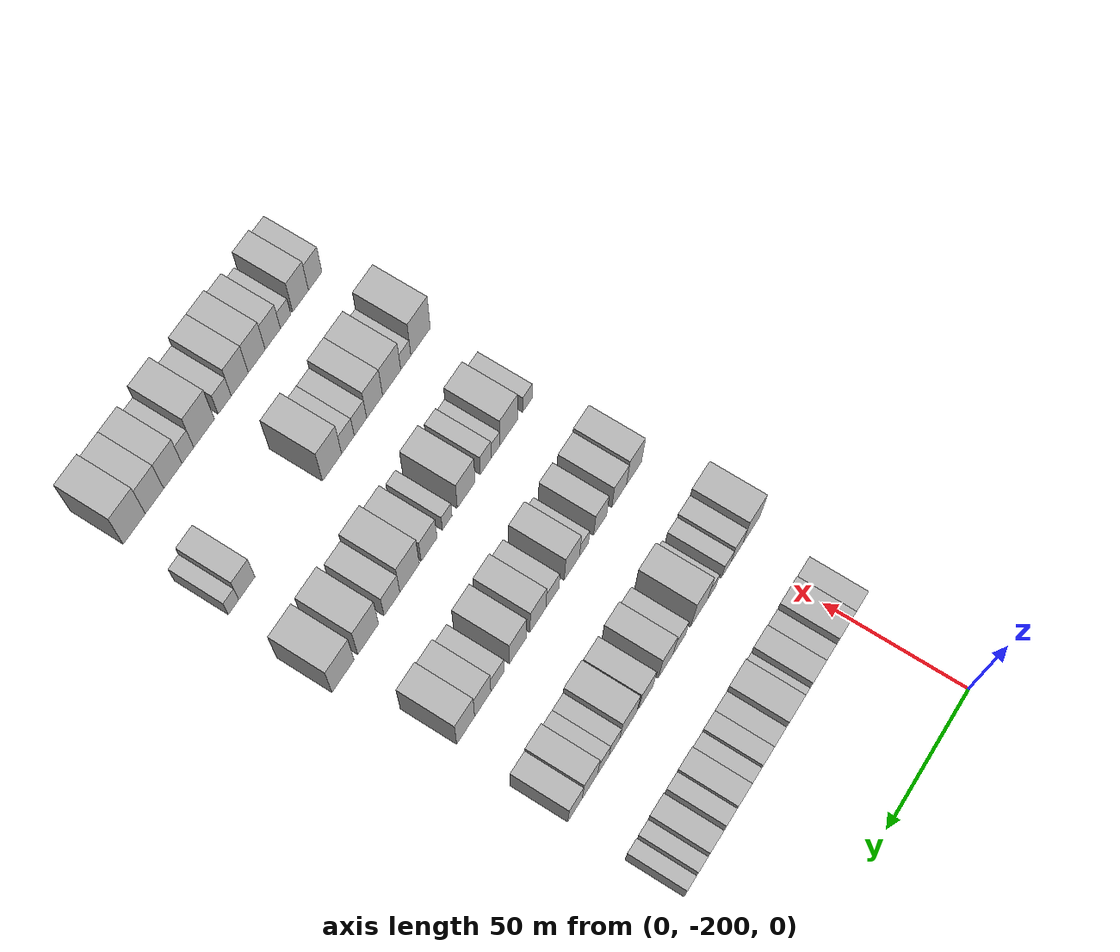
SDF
<sdf version="1.6">
 <world name="default">
  <model name="building_49">
   <static>1</static>
   <pose>50.0000 -200.3005 0 0.000000 0.000000 0.000000</pose>
   <link name="link">
    <pose>0 0 9.00 0 0 0</pose>
    <collision name="collision"><geometry><box><size>20.0000 8.2305 18.0000</size></box></geometry></collision>
    <visual name="visual">
     <cast_shadows>0</cast_shadows>
     <geometry><box><size>20.0000 8.2305 18.0000</size></box></geometry>
     <material>
      <script>
       <uri>model://HANNAS_wall/materials/scripts</uri>
       <uri>model://HANNAS_wall/materials/textures</uri>
       <name>vrc/HANNAS_wall</name>
      </script>
     </material>
    </visual>
   </link>
  </model>
  <model name="building_50">
   <static>1</static>
   <pose>50.0000 -191.2537 0 0.000000 0.000000 0.000000</pose>
   <link name="link">
    <pose>0 0 10.50 0 0 0</pose>
    <collision name="collision"><geometry><box><size>20.0000 9.8631 21.0000</size></box></geometry></collision>
    <visual name="visual">
     <cast_shadows>0</cast_shadows>
     <geometry><box><size>20.0000 9.8631 21.0000</size></box></geometry>
     <material>
      <script>
       <uri>model://HANNAS_wall/materials/scripts</uri>
       <uri>model://HANNAS_wall/materials/textures</uri>
       <name>vrc/HANNAS_wall</name>
      </script>
     </material>
    </visual>
   </link>
  </model>
  <model name="building_51">
   <static>1</static>
   <pose>50.0000 -182.9809 0 0.000000 0.000000 0.000000</pose>
   <link name="link">
    <pose>0 0 7.50 0 0 0</pose>
    <collision name="collision"><geometry><box><size>20.0000 6.6825 15.0000</size></box></geometry></collision>
    <visual name="visual">
     <cast_shadows>0</cast_shadows>
     <geometry><box><size>20.0000 6.6825 15.0000</size></box></geometry>
     <material>
      <script>
       <uri>model://HANNAS_wall/materials/scripts</uri>
       <uri>model://HANNAS_wall/materials/textures</uri>
       <name>vrc/HANNAS_wall</name>
      </script>
     </material>
    </visual>
   </link>
  </model>
  <model name="building_52">
   <static>1</static>
   <pose>50.0000 -175.6053 0 0.000000 0.000000 0.000000</pose>
   <link name="link">
    <pose>0 0 9.00 0 0 0</pose>
    <collision name="collision"><geometry><box><size>20.0000 8.0686 18.0000</size></box></geometry></collision>
    <visual name="visual">
     <cast_shadows>0</cast_shadows>
     <geometry><box><size>20.0000 8.0686 18.0000</size></box></geometry>
     <material>
      <script>
       <uri>model://HANNAS_wall/materials/scripts</uri>
       <uri>model://HANNAS_wall/materials/textures</uri>
       <name>vrc/HANNAS_wall</name>
      </script>
     </material>
    </visual>
   </link>
  </model>
  <model name="building_53">
   <static>1</static>
   <pose>50.0000 -169.0578 0 0.000000 0.000000 0.000000</pose>
   <link name="link">
    <pose>0 0 6.00 0 0 0</pose>
    <collision name="collision"><geometry><box><size>20.0000 5.0264 12.0000</size></box></geometry></collision>
    <visual name="visual">
     <cast_shadows>0</cast_shadows>
     <geometry><box><size>20.0000 5.0264 12.0000</size></box></geometry>
     <material>
      <script>
       <uri>model://HANNAS_wall/materials/scripts</uri>
       <uri>model://HANNAS_wall/materials/textures</uri>
       <name>vrc/HANNAS_wall</name>
      </script>
     </material>
    </visual>
   </link>
  </model>
  <model name="building_54">
   <static>1</static>
   <pose>50.0000 -161.7525 0 0.000000 0.000000 0.000000</pose>
   <link name="link">
    <pose>0 0 10.50 0 0 0</pose>
    <collision name="collision"><geometry><box><size>20.0000 9.5842 21.0000</size></box></geometry></collision>
    <visual name="visual">
     <cast_shadows>0</cast_shadows>
     <geometry><box><size>20.0000 9.5842 21.0000</size></box></geometry>
     <material>
      <script>
       <uri>model://HANNAS_wall/materials/scripts</uri>
       <uri>model://HANNAS_wall/materials/textures</uri>
       <name>vrc/HANNAS_wall</name>
      </script>
     </material>
    </visual>
   </link>
  </model>
  <model name="building_55">
   <static>1</static>
   <pose>50.0000 -153.5226 0 0.000000 0.000000 0.000000</pose>
   <link name="link">
    <pose>0 0 7.50 0 0 0</pose>
    <collision name="collision"><geometry><box><size>20.0000 6.8758 15.0000</size></box></geometry></collision>
    <visual name="visual">
     <cast_shadows>0</cast_shadows>
     <geometry><box><size>20.0000 6.8758 15.0000</size></box></geometry>
     <material>
      <script>
       <uri>model://HANNAS_wall/materials/scripts</uri>
       <uri>model://HANNAS_wall/materials/textures</uri>
       <name>vrc/HANNAS_wall</name>
      </script>
     </material>
    </visual>
   </link>
  </model>
  <model name="building_56">
   <static>1</static>
   <pose>50.0000 -146.8123 0 0.000000 0.000000 0.000000</pose>
   <link name="link">
    <pose>0 0 7.50 0 0 0</pose>
    <collision name="collision"><geometry><box><size>20.0000 6.5448 15.0000</size></box></geometry></collision>
    <visual name="visual">
     <cast_shadows>0</cast_shadows>
     <geometry><box><size>20.0000 6.5448 15.0000</size></box></geometry>
     <material>
      <script>
       <uri>model://HANNAS_wall/materials/scripts</uri>
       <uri>model://HANNAS_wall/materials/textures</uri>
       <name>vrc/HANNAS_wall</name>
      </script>
     </material>
    </visual>
   </link>
  </model>
  <model name="building_57">
   <static>1</static>
   <pose>50.0000 -140.6268 0 0.000000 0.000000 0.000000</pose>
   <link name="link">
    <pose>0 0 6.00 0 0 0</pose>
    <collision name="collision"><geometry><box><size>20.0000 5.8261 12.0000</size></box></geometry></collision>
    <visual name="visual">
     <cast_shadows>0</cast_shadows>
     <geometry><box><size>20.0000 5.8261 12.0000</size></box></geometry>
     <material>
      <script>
       <uri>model://HANNAS_wall/materials/scripts</uri>
       <uri>model://HANNAS_wall/materials/textures</uri>
       <name>vrc/HANNAS_wall</name>
      </script>
     </material>
    </visual>
   </link>
  </model>
  <model name="building_58">
   <static>1</static>
   <pose>50.0000 -132.7668 0 0.000000 0.000000 0.000000</pose>
   <link name="link">
    <pose>0 0 9.00 0 0 0</pose>
    <collision name="collision"><geometry><box><size>20.0000 7.8940 18.0000</size></box></geometry></collision>
    <visual name="visual">
     <cast_shadows>0</cast_shadows>
     <geometry><box><size>20.0000 7.8940 18.0000</size></box></geometry>
     <material>
      <script>
       <uri>model://HANNAS_wall/materials/scripts</uri>
       <uri>model://HANNAS_wall/materials/textures</uri>
       <name>vrc/HANNAS_wall</name>
      </script>
     </material>
    </visual>
   </link>
  </model>
  <model name="building_59">
   <static>1</static>
   <pose>50.0000 -125.8042 0 0.000000 0.000000 0.000000</pose>
   <link name="link">
    <pose>0 0 7.50 0 0 0</pose>
    <collision name="collision"><geometry><box><size>20.0000 6.0313 15.0000</size></box></geometry></collision>
    <visual name="visual">
     <cast_shadows>0</cast_shadows>
     <geometry><box><size>20.0000 6.0313 15.0000</size></box></geometry>
     <material>
      <script>
       <uri>model://HANNAS_wall/materials/scripts</uri>
       <uri>model://HANNAS_wall/materials/textures</uri>
       <name>vrc/HANNAS_wall</name>
      </script>
     </material>
    </visual>
   </link>
  </model>
  <model name="building_60">
   <static>1</static>
   <pose>50.0000 -116.9228 0 0.000000 0.000000 0.000000</pose>
   <link name="link">
    <pose>0 0 9.00 0 0 0</pose>
    <collision name="collision"><geometry><box><size>20.0000 7.7317 18.0000</size></box></geometry></collision>
    <visual name="visual">
     <cast_shadows>0</cast_shadows>
     <geometry><box><size>20.0000 7.7317 18.0000</size></box></geometry>
     <material>
      <script>
       <uri>model://HANNAS_wall/materials/scripts</uri>
       <uri>model://HANNAS_wall/materials/textures</uri>
       <name>vrc/HANNAS_wall</name>
      </script>
     </material>
    </visual>
   </link>
  </model>
  <model name="building_61">
   <static>1</static>
   <pose>50.0000 -110.3490 0 0.000000 0.000000 0.000000</pose>
   <link name="link">
    <pose>0 0 6.00 0 0 0</pose>
    <collision name="collision"><geometry><box><size>20.0000 5.4158 12.0000</size></box></geometry></collision>
    <visual name="visual">
     <cast_shadows>0</cast_shadows>
     <geometry><box><size>20.0000 5.4158 12.0000</size></box></geometry>
     <material>
      <script>
       <uri>model://HANNAS_wall/materials/scripts</uri>
       <uri>model://HANNAS_wall/materials/textures</uri>
       <name>vrc/HANNAS_wall</name>
      </script>
     </material>
    </visual>
   </link>
  </model>
  <model name="building_62">
   <static>1</static>
   <pose>50.0000 -104.0448 0 0.000000 0.000000 0.000000</pose>
   <link name="link">
    <pose>0 0 6.00 0 0 0</pose>
    <collision name="collision"><geometry><box><size>20.0000 5.1927 12.0000</size></box></geometry></collision>
    <visual name="visual">
     <cast_shadows>0</cast_shadows>
     <geometry><box><size>20.0000 5.1927 12.0000</size></box></geometry>
     <material>
      <script>
       <uri>model://HANNAS_wall/materials/scripts</uri>
       <uri>model://HANNAS_wall/materials/textures</uri>
       <name>vrc/HANNAS_wall</name>
      </script>
     </material>
    </visual>
   </link>
  </model>
  <model name="building_189">
   <static>1</static>
   <pose>90.0000 -208.1577 0 0.000000 0.000000 0.000000</pose>
   <link name="link">
    <pose>0 0 10.50 0 0 0</pose>
    <collision name="collision"><geometry><box><size>20.0000 10.3792 21.0000</size></box></geometry></collision>
    <visual name="visual">
     <cast_shadows>0</cast_shadows>
     <geometry><box><size>20.0000 10.3792 21.0000</size></box></geometry>
     <material>
      <script>
       <uri>model://HANNAS_wall/materials/scripts</uri>
       <uri>model://HANNAS_wall/materials/textures</uri>
       <name>vrc/HANNAS_wall</name>
      </script>
     </material>
    </visual>
   </link>
  </model>
  <model name="building_190">
   <static>1</static>
   <pose>90.0000 -199.4439 0 0.000000 0.000000 0.000000</pose>
   <link name="link">
    <pose>0 0 7.50 0 0 0</pose>
    <collision name="collision"><geometry><box><size>20.0000 7.0485 15.0000</size></box></geometry></collision>
    <visual name="visual">
     <cast_shadows>0</cast_shadows>
     <geometry><box><size>20.0000 7.0485 15.0000</size></box></geometry>
     <material>
      <script>
       <uri>model://HANNAS_wall/materials/scripts</uri>
       <uri>model://HANNAS_wall/materials/textures</uri>
       <name>vrc/HANNAS_wall</name>
      </script>
     </material>
    </visual>
   </link>
  </model>
  <model name="building_191">
   <static>1</static>
   <pose>90.0000 -193.0542 0 0.000000 0.000000 0.000000</pose>
   <link name="link">
    <pose>0 0 6.00 0 0 0</pose>
    <collision name="collision"><geometry><box><size>20.0000 5.7309 12.0000</size></box></geometry></collision>
    <visual name="visual">
     <cast_shadows>0</cast_shadows>
     <geometry><box><size>20.0000 5.7309 12.0000</size></box></geometry>
     <material>
      <script>
       <uri>model://HANNAS_wall/materials/scripts</uri>
       <uri>model://HANNAS_wall/materials/textures</uri>
       <name>vrc/HANNAS_wall</name>
      </script>
     </material>
    </visual>
   </link>
  </model>
  <model name="building_192">
   <static>1</static>
   <pose>90.0000 -184.5209 0 0.000000 0.000000 0.000000</pose>
   <link name="link">
    <pose>0 0 6.00 0 0 0</pose>
    <collision name="collision"><geometry><box><size>20.0000 5.3356 12.0000</size></box></geometry></collision>
    <visual name="visual">
     <cast_shadows>0</cast_shadows>
     <geometry><box><size>20.0000 5.3356 12.0000</size></box></geometry>
     <material>
      <script>
       <uri>model://HANNAS_wall/materials/scripts</uri>
       <uri>model://HANNAS_wall/materials/textures</uri>
       <name>vrc/HANNAS_wall</name>
      </script>
     </material>
    </visual>
   </link>
  </model>
  <model name="building_193">
   <static>1</static>
   <pose>90.0000 -176.9055 0 0.000000 0.000000 0.000000</pose>
   <link name="link">
    <pose>0 0 12.00 0 0 0</pose>
    <collision name="collision"><geometry><box><size>20.0000 9.8951 24.0000</size></box></geometry></collision>
    <visual name="visual">
     <cast_shadows>0</cast_shadows>
     <geometry><box><size>20.0000 9.8951 24.0000</size></box></geometry>
     <material>
      <script>
       <uri>model://HANNAS_wall/materials/scripts</uri>
       <uri>model://HANNAS_wall/materials/textures</uri>
       <name>vrc/HANNAS_wall</name>
      </script>
     </material>
    </visual>
   </link>
  </model>
  <model name="building_194">
   <static>1</static>
   <pose>90.0000 -165.2714 0 0.000000 0.000000 0.000000</pose>
   <link name="link">
    <pose>0 0 7.50 0 0 0</pose>
    <collision name="collision"><geometry><box><size>20.0000 7.3732 15.0000</size></box></geometry></collision>
    <visual name="visual">
     <cast_shadows>0</cast_shadows>
     <geometry><box><size>20.0000 7.3732 15.0000</size></box></geometry>
     <material>
      <script>
       <uri>model://HANNAS_wall/materials/scripts</uri>
       <uri>model://HANNAS_wall/materials/textures</uri>
       <name>vrc/HANNAS_wall</name>
      </script>
     </material>
    </visual>
   </link>
  </model>
  <model name="building_195">
   <static>1</static>
   <pose>90.0000 -157.3476 0 0.000000 0.000000 0.000000</pose>
   <link name="link">
    <pose>0 0 10.50 0 0 0</pose>
    <collision name="collision"><geometry><box><size>20.0000 8.4745 21.0000</size></box></geometry></collision>
    <visual name="visual">
     <cast_shadows>0</cast_shadows>
     <geometry><box><size>20.0000 8.4745 21.0000</size></box></geometry>
     <material>
      <script>
       <uri>model://HANNAS_wall/materials/scripts</uri>
       <uri>model://HANNAS_wall/materials/textures</uri>
       <name>vrc/HANNAS_wall</name>
      </script>
     </material>
    </visual>
   </link>
  </model>
  <model name="building_196">
   <static>1</static>
   <pose>90.0000 -145.9497 0 0.000000 0.000000 0.000000</pose>
   <link name="link">
    <pose>0 0 9.00 0 0 0</pose>
    <collision name="collision"><geometry><box><size>20.0000 8.3211 18.0000</size></box></geometry></collision>
    <visual name="visual">
     <cast_shadows>0</cast_shadows>
     <geometry><box><size>20.0000 8.3211 18.0000</size></box></geometry>
     <material>
      <script>
       <uri>model://HANNAS_wall/materials/scripts</uri>
       <uri>model://HANNAS_wall/materials/textures</uri>
       <name>vrc/HANNAS_wall</name>
      </script>
     </material>
    </visual>
   </link>
  </model>
  <model name="building_197">
   <static>1</static>
   <pose>90.0000 -135.8402 0 0.000000 0.000000 0.000000</pose>
   <link name="link">
    <pose>0 0 10.50 0 0 0</pose>
    <collision name="collision"><geometry><box><size>20.0000 9.8979 21.0000</size></box></geometry></collision>
    <visual name="visual">
     <cast_shadows>0</cast_shadows>
     <geometry><box><size>20.0000 9.8979 21.0000</size></box></geometry>
     <material>
      <script>
       <uri>model://HANNAS_wall/materials/scripts</uri>
       <uri>model://HANNAS_wall/materials/textures</uri>
       <name>vrc/HANNAS_wall</name>
      </script>
     </material>
    </visual>
   </link>
  </model>
  <model name="building_198">
   <static>1</static>
   <pose>90.0000 -127.8401 0 0.000000 0.000000 0.000000</pose>
   <link name="link">
    <pose>0 0 7.50 0 0 0</pose>
    <collision name="collision"><geometry><box><size>20.0000 6.1024 15.0000</size></box></geometry></collision>
    <visual name="visual">
     <cast_shadows>0</cast_shadows>
     <geometry><box><size>20.0000 6.1024 15.0000</size></box></geometry>
     <material>
      <script>
       <uri>model://HANNAS_wall/materials/scripts</uri>
       <uri>model://HANNAS_wall/materials/textures</uri>
       <name>vrc/HANNAS_wall</name>
      </script>
     </material>
    </visual>
   </link>
  </model>
  <model name="building_199">
   <static>1</static>
   <pose>90.0000 -121.6535 0 0.000000 0.000000 0.000000</pose>
   <link name="link">
    <pose>0 0 7.50 0 0 0</pose>
    <collision name="collision"><geometry><box><size>20.0000 6.2709 15.0000</size></box></geometry></collision>
    <visual name="visual">
     <cast_shadows>0</cast_shadows>
     <geometry><box><size>20.0000 6.2709 15.0000</size></box></geometry>
     <material>
      <script>
       <uri>model://HANNAS_wall/materials/scripts</uri>
       <uri>model://HANNAS_wall/materials/textures</uri>
       <name>vrc/HANNAS_wall</name>
      </script>
     </material>
    </visual>
   </link>
  </model>
  <model name="building_200">
   <static>1</static>
   <pose>90.0000 -114.1725 0 0.000000 0.000000 0.000000</pose>
   <link name="link">
    <pose>0 0 10.50 0 0 0</pose>
    <collision name="collision"><geometry><box><size>20.0000 8.6910 21.0000</size></box></geometry></collision>
    <visual name="visual">
     <cast_shadows>0</cast_shadows>
     <geometry><box><size>20.0000 8.6910 21.0000</size></box></geometry>
     <material>
      <script>
       <uri>model://HANNAS_wall/materials/scripts</uri>
       <uri>model://HANNAS_wall/materials/textures</uri>
       <name>vrc/HANNAS_wall</name>
      </script>
     </material>
    </visual>
   </link>
  </model>
  <model name="building_201">
   <static>1</static>
   <pose>90.0000 -105.8545 0 0.000000 0.000000 0.000000</pose>
   <link name="link">
    <pose>0 0 9.00 0 0 0</pose>
    <collision name="collision"><geometry><box><size>20.0000 7.9448 18.0000</size></box></geometry></collision>
    <visual name="visual">
     <cast_shadows>0</cast_shadows>
     <geometry><box><size>20.0000 7.9448 18.0000</size></box></geometry>
     <material>
      <script>
       <uri>model://HANNAS_wall/materials/scripts</uri>
       <uri>model://HANNAS_wall/materials/textures</uri>
       <name>vrc/HANNAS_wall</name>
      </script>
     </material>
    </visual>
   </link>
  </model>
  <model name="building_326">
   <static>1</static>
   <pose>130.0000 -204.8175 0 0.000000 0.000000 0.000000</pose>
   <link name="link">
    <pose>0 0 10.50 0 0 0</pose>
    <collision name="collision"><geometry><box><size>20.0000 8.8917 21.0000</size></box></geometry></collision>
    <visual name="visual">
     <cast_shadows>0</cast_shadows>
     <geometry><box><size>20.0000 8.8917 21.0000</size></box></geometry>
     <material>
      <script>
       <uri>model://HANNAS_wall/materials/scripts</uri>
       <uri>model://HANNAS_wall/materials/textures</uri>
       <name>vrc/HANNAS_wall</name>
      </script>
     </material>
    </visual>
   </link>
  </model>
  <model name="building_327">
   <static>1</static>
   <pose>130.0000 -196.0402 0 0.000000 0.000000 0.000000</pose>
   <link name="link">
    <pose>0 0 9.00 0 0 0</pose>
    <collision name="collision"><geometry><box><size>20.0000 8.6630 18.0000</size></box></geometry></collision>
    <visual name="visual">
     <cast_shadows>0</cast_shadows>
     <geometry><box><size>20.0000 8.6630 18.0000</size></box></geometry>
     <material>
      <script>
       <uri>model://HANNAS_wall/materials/scripts</uri>
       <uri>model://HANNAS_wall/materials/textures</uri>
       <name>vrc/HANNAS_wall</name>
      </script>
     </material>
    </visual>
   </link>
  </model>
  <model name="building_328">
   <static>1</static>
   <pose>130.0000 -184.8682 0 0.000000 0.000000 0.000000</pose>
   <link name="link">
    <pose>0 0 9.00 0 0 0</pose>
    <collision name="collision"><geometry><box><size>20.0000 7.6809 18.0000</size></box></geometry></collision>
    <visual name="visual">
     <cast_shadows>0</cast_shadows>
     <geometry><box><size>20.0000 7.6809 18.0000</size></box></geometry>
     <material>
      <script>
       <uri>model://HANNAS_wall/materials/scripts</uri>
       <uri>model://HANNAS_wall/materials/textures</uri>
       <name>vrc/HANNAS_wall</name>
      </script>
     </material>
    </visual>
   </link>
  </model>
  <model name="building_329">
   <static>1</static>
   <pose>130.0000 -175.4334 0 0.000000 0.000000 0.000000</pose>
   <link name="link">
    <pose>0 0 6.00 0 0 0</pose>
    <collision name="collision"><geometry><box><size>20.0000 5.1887 12.0000</size></box></geometry></collision>
    <visual name="visual">
     <cast_shadows>0</cast_shadows>
     <geometry><box><size>20.0000 5.1887 12.0000</size></box></geometry>
     <material>
      <script>
       <uri>model://HANNAS_wall/materials/scripts</uri>
       <uri>model://HANNAS_wall/materials/textures</uri>
       <name>vrc/HANNAS_wall</name>
      </script>
     </material>
    </visual>
   </link>
  </model>
  <model name="building_330">
   <static>1</static>
   <pose>130.0000 -168.4266 0 0.000000 0.000000 0.000000</pose>
   <link name="link">
    <pose>0 0 10.50 0 0 0</pose>
    <collision name="collision"><geometry><box><size>20.0000 8.8248 21.0000</size></box></geometry></collision>
    <visual name="visual">
     <cast_shadows>0</cast_shadows>
     <geometry><box><size>20.0000 8.8248 21.0000</size></box></geometry>
     <material>
      <script>
       <uri>model://HANNAS_wall/materials/scripts</uri>
       <uri>model://HANNAS_wall/materials/textures</uri>
       <name>vrc/HANNAS_wall</name>
      </script>
     </material>
    </visual>
   </link>
  </model>
  <model name="building_331">
   <static>1</static>
   <pose>130.0000 -157.2724 0 0.000000 0.000000 0.000000</pose>
   <link name="link">
    <pose>0 0 7.50 0 0 0</pose>
    <collision name="collision"><geometry><box><size>20.0000 7.4836 15.0000</size></box></geometry></collision>
    <visual name="visual">
     <cast_shadows>0</cast_shadows>
     <geometry><box><size>20.0000 7.4836 15.0000</size></box></geometry>
     <material>
      <script>
       <uri>model://HANNAS_wall/materials/scripts</uri>
       <uri>model://HANNAS_wall/materials/textures</uri>
       <name>vrc/HANNAS_wall</name>
      </script>
     </material>
    </visual>
   </link>
  </model>
  <model name="building_332">
   <static>1</static>
   <pose>130.0000 -149.0197 0 0.000000 0.000000 0.000000</pose>
   <link name="link">
    <pose>0 0 10.50 0 0 0</pose>
    <collision name="collision"><geometry><box><size>20.0000 9.0217 21.0000</size></box></geometry></collision>
    <visual name="visual">
     <cast_shadows>0</cast_shadows>
     <geometry><box><size>20.0000 9.0217 21.0000</size></box></geometry>
     <material>
      <script>
       <uri>model://HANNAS_wall/materials/scripts</uri>
       <uri>model://HANNAS_wall/materials/textures</uri>
       <name>vrc/HANNAS_wall</name>
      </script>
     </material>
    </visual>
   </link>
  </model>
  <model name="building_333">
   <static>1</static>
   <pose>130.0000 -137.7573 0 0.000000 0.000000 0.000000</pose>
   <link name="link">
    <pose>0 0 10.50 0 0 0</pose>
    <collision name="collision"><geometry><box><size>20.0000 9.5032 21.0000</size></box></geometry></collision>
    <visual name="visual">
     <cast_shadows>0</cast_shadows>
     <geometry><box><size>20.0000 9.5032 21.0000</size></box></geometry>
     <material>
      <script>
       <uri>model://HANNAS_wall/materials/scripts</uri>
       <uri>model://HANNAS_wall/materials/textures</uri>
       <name>vrc/HANNAS_wall</name>
      </script>
     </material>
    </visual>
   </link>
  </model>
  <model name="building_334">
   <static>1</static>
   <pose>130.0000 -126.3179 0 0.000000 0.000000 0.000000</pose>
   <link name="link">
    <pose>0 0 7.50 0 0 0</pose>
    <collision name="collision"><geometry><box><size>20.0000 7.3756 15.0000</size></box></geometry></collision>
    <visual name="visual">
     <cast_shadows>0</cast_shadows>
     <geometry><box><size>20.0000 7.3756 15.0000</size></box></geometry>
     <material>
      <script>
       <uri>model://HANNAS_wall/materials/scripts</uri>
       <uri>model://HANNAS_wall/materials/textures</uri>
       <name>vrc/HANNAS_wall</name>
      </script>
     </material>
    </visual>
   </link>
  </model>
  <model name="building_335">
   <static>1</static>
   <pose>130.0000 -118.1557 0 0.000000 0.000000 0.000000</pose>
   <link name="link">
    <pose>0 0 10.50 0 0 0</pose>
    <collision name="collision"><geometry><box><size>20.0000 8.9488 21.0000</size></box></geometry></collision>
    <visual name="visual">
     <cast_shadows>0</cast_shadows>
     <geometry><box><size>20.0000 8.9488 21.0000</size></box></geometry>
     <material>
      <script>
       <uri>model://HANNAS_wall/materials/scripts</uri>
       <uri>model://HANNAS_wall/materials/textures</uri>
       <name>vrc/HANNAS_wall</name>
      </script>
     </material>
    </visual>
   </link>
  </model>
  <model name="building_336">
   <static>1</static>
   <pose>130.0000 -108.7756 0 0.000000 0.000000 0.000000</pose>
   <link name="link">
    <pose>0 0 12.00 0 0 0</pose>
    <collision name="collision"><geometry><box><size>20.0000 9.8114 24.0000</size></box></geometry></collision>
    <visual name="visual">
     <cast_shadows>0</cast_shadows>
     <geometry><box><size>20.0000 9.8114 24.0000</size></box></geometry>
     <material>
      <script>
       <uri>model://HANNAS_wall/materials/scripts</uri>
       <uri>model://HANNAS_wall/materials/textures</uri>
       <name>vrc/HANNAS_wall</name>
      </script>
     </material>
    </visual>
   </link>
  </model>
  <model name="building_466">
   <static>1</static>
   <pose>170.0000 -206.3429 0 0.000000 0.000000 0.000000</pose>
   <link name="link">
    <pose>0 0 6.00 0 0 0</pose>
    <collision name="collision"><geometry><box><size>20.0000 5.4747 12.0000</size></box></geometry></collision>
    <visual name="visual">
     <cast_shadows>0</cast_shadows>
     <geometry><box><size>20.0000 5.4747 12.0000</size></box></geometry>
     <material>
      <script>
       <uri>model://HANNAS_wall/materials/scripts</uri>
       <uri>model://HANNAS_wall/materials/textures</uri>
       <name>vrc/HANNAS_wall</name>
      </script>
     </material>
    </visual>
   </link>
  </model>
  <model name="building_467">
   <static>1</static>
   <pose>170.0000 -195.4884 0 0.000000 0.000000 0.000000</pose>
   <link name="link">
    <pose>0 0 10.50 0 0 0</pose>
    <collision name="collision"><geometry><box><size>20.0000 10.2343 21.0000</size></box></geometry></collision>
    <visual name="visual">
     <cast_shadows>0</cast_shadows>
     <geometry><box><size>20.0000 10.2343 21.0000</size></box></geometry>
     <material>
      <script>
       <uri>model://HANNAS_wall/materials/scripts</uri>
       <uri>model://HANNAS_wall/materials/textures</uri>
       <name>vrc/HANNAS_wall</name>
      </script>
     </material>
    </visual>
   </link>
  </model>
  <model name="building_468">
   <static>1</static>
   <pose>170.0000 -187.8562 0 0.000000 0.000000 0.000000</pose>
   <link name="link">
    <pose>0 0 6.00 0 0 0</pose>
    <collision name="collision"><geometry><box><size>20.0000 5.0300 12.0000</size></box></geometry></collision>
    <visual name="visual">
     <cast_shadows>0</cast_shadows>
     <geometry><box><size>20.0000 5.0300 12.0000</size></box></geometry>
     <material>
      <script>
       <uri>model://HANNAS_wall/materials/scripts</uri>
       <uri>model://HANNAS_wall/materials/textures</uri>
       <name>vrc/HANNAS_wall</name>
      </script>
     </material>
    </visual>
   </link>
  </model>
  <model name="building_469">
   <static>1</static>
   <pose>170.0000 -182.2184 0 0.000000 0.000000 0.000000</pose>
   <link name="link">
    <pose>0 0 7.50 0 0 0</pose>
    <collision name="collision"><geometry><box><size>20.0000 6.2456 15.0000</size></box></geometry></collision>
    <visual name="visual">
     <cast_shadows>0</cast_shadows>
     <geometry><box><size>20.0000 6.2456 15.0000</size></box></geometry>
     <material>
      <script>
       <uri>model://HANNAS_wall/materials/scripts</uri>
       <uri>model://HANNAS_wall/materials/textures</uri>
       <name>vrc/HANNAS_wall</name>
      </script>
     </material>
    </visual>
   </link>
  </model>
  <model name="building_470">
   <static>1</static>
   <pose>170.0000 -171.0382 0 0.000000 0.000000 0.000000</pose>
   <link name="link">
    <pose>0 0 10.50 0 0 0</pose>
    <collision name="collision"><geometry><box><size>20.0000 10.1148 21.0000</size></box></geometry></collision>
    <visual name="visual">
     <cast_shadows>0</cast_shadows>
     <geometry><box><size>20.0000 10.1148 21.0000</size></box></geometry>
     <material>
      <script>
       <uri>model://HANNAS_wall/materials/scripts</uri>
       <uri>model://HANNAS_wall/materials/textures</uri>
       <name>vrc/HANNAS_wall</name>
      </script>
     </material>
    </visual>
   </link>
  </model>
  <model name="building_471">
   <static>1</static>
   <pose>170.0000 -160.2871 0 0.000000 0.000000 0.000000</pose>
   <link name="link">
    <pose>0 0 6.00 0 0 0</pose>
    <collision name="collision"><geometry><box><size>20.0000 5.3875 12.0000</size></box></geometry></collision>
    <visual name="visual">
     <cast_shadows>0</cast_shadows>
     <geometry><box><size>20.0000 5.3875 12.0000</size></box></geometry>
     <material>
      <script>
       <uri>model://HANNAS_wall/materials/scripts</uri>
       <uri>model://HANNAS_wall/materials/textures</uri>
       <name>vrc/HANNAS_wall</name>
      </script>
     </material>
    </visual>
   </link>
  </model>
  <model name="building_472">
   <static>1</static>
   <pose>170.0000 -150.1588 0 0.000000 0.000000 0.000000</pose>
   <link name="link">
    <pose>0 0 9.00 0 0 0</pose>
    <collision name="collision"><geometry><box><size>20.0000 8.8691 18.0000</size></box></geometry></collision>
    <visual name="visual">
     <cast_shadows>0</cast_shadows>
     <geometry><box><size>20.0000 8.8691 18.0000</size></box></geometry>
     <material>
      <script>
       <uri>model://HANNAS_wall/materials/scripts</uri>
       <uri>model://HANNAS_wall/materials/textures</uri>
       <name>vrc/HANNAS_wall</name>
      </script>
     </material>
    </visual>
   </link>
  </model>
  <model name="building_473">
   <static>1</static>
   <pose>170.0000 -139.3335 0 0.000000 0.000000 0.000000</pose>
   <link name="link">
    <pose>0 0 12.00 0 0 0</pose>
    <collision name="collision"><geometry><box><size>20.0000 10.7816 24.0000</size></box></geometry></collision>
    <visual name="visual">
     <cast_shadows>0</cast_shadows>
     <geometry><box><size>20.0000 10.7816 24.0000</size></box></geometry>
     <material>
      <script>
       <uri>model://HANNAS_wall/materials/scripts</uri>
       <uri>model://HANNAS_wall/materials/textures</uri>
       <name>vrc/HANNAS_wall</name>
      </script>
     </material>
    </visual>
   </link>
  </model>
  <model name="building_474">
   <static>1</static>
   <pose>170.0000 -129.6079 0 0.000000 0.000000 0.000000</pose>
   <link name="link">
    <pose>0 0 9.00 0 0 0</pose>
    <collision name="collision"><geometry><box><size>20.0000 8.6696 18.0000</size></box></geometry></collision>
    <visual name="visual">
     <cast_shadows>0</cast_shadows>
     <geometry><box><size>20.0000 8.6696 18.0000</size></box></geometry>
     <material>
      <script>
       <uri>model://HANNAS_wall/materials/scripts</uri>
       <uri>model://HANNAS_wall/materials/textures</uri>
       <name>vrc/HANNAS_wall</name>
      </script>
     </material>
    </visual>
   </link>
  </model>
  <model name="building_475">
   <static>1</static>
   <pose>170.0000 -116.6112 0 0.000000 0.000000 0.000000</pose>
   <link name="link">
    <pose>0 0 12.00 0 0 0</pose>
    <collision name="collision"><geometry><box><size>20.0000 11.3239 24.0000</size></box></geometry></collision>
    <visual name="visual">
     <cast_shadows>0</cast_shadows>
     <geometry><box><size>20.0000 11.3239 24.0000</size></box></geometry>
     <material>
      <script>
       <uri>model://HANNAS_wall/materials/scripts</uri>
       <uri>model://HANNAS_wall/materials/textures</uri>
       <name>vrc/HANNAS_wall</name>
      </script>
     </material>
    </visual>
   </link>
  </model>
  <model name="building_476">
   <static>1</static>
   <pose>170.0000 -103.0180 0 0.000000 0.000000 0.000000</pose>
   <link name="link">
    <pose>0 0 12.00 0 0 0</pose>
    <collision name="collision"><geometry><box><size>20.0000 11.8623 24.0000</size></box></geometry></collision>
    <visual name="visual">
     <cast_shadows>0</cast_shadows>
     <geometry><box><size>20.0000 11.8623 24.0000</size></box></geometry>
     <material>
      <script>
       <uri>model://HANNAS_wall/materials/scripts</uri>
       <uri>model://HANNAS_wall/materials/textures</uri>
       <name>vrc/HANNAS_wall</name>
      </script>
     </material>
    </visual>
   </link>
  </model>
  <model name="building_613">
   <static>1</static>
   <pose>210.0000 -206.3884 0 0.000000 0.000000 0.000000</pose>
   <link name="link">
    <pose>0 0 12.00 0 0 0</pose>
    <collision name="collision"><geometry><box><size>20.0000 11.1576 24.0000</size></box></geometry></collision>
    <visual name="visual">
     <cast_shadows>0</cast_shadows>
     <geometry><box><size>20.0000 11.1576 24.0000</size></box></geometry>
     <material>
      <script>
       <uri>model://HANNAS_wall/materials/scripts</uri>
       <uri>model://HANNAS_wall/materials/textures</uri>
       <name>vrc/HANNAS_wall</name>
      </script>
     </material>
    </visual>
   </link>
  </model>
  <model name="building_614">
   <static>1</static>
   <pose>210.0000 -197.9158 0 0.000000 0.000000 0.000000</pose>
   <link name="link">
    <pose>0 0 6.00 0 0 0</pose>
    <collision name="collision"><geometry><box><size>20.0000 5.7878 12.0000</size></box></geometry></collision>
    <visual name="visual">
     <cast_shadows>0</cast_shadows>
     <geometry><box><size>20.0000 5.7878 12.0000</size></box></geometry>
     <material>
      <script>
       <uri>model://HANNAS_wall/materials/scripts</uri>
       <uri>model://HANNAS_wall/materials/textures</uri>
       <name>vrc/HANNAS_wall</name>
      </script>
     </material>
    </visual>
   </link>
  </model>
  <model name="building_615">
   <static>1</static>
   <pose>210.0000 -189.8598 0 0.000000 0.000000 0.000000</pose>
   <link name="link">
    <pose>0 0 10.50 0 0 0</pose>
    <collision name="collision"><geometry><box><size>20.0000 10.3242 21.0000</size></box></geometry></collision>
    <visual name="visual">
     <cast_shadows>0</cast_shadows>
     <geometry><box><size>20.0000 10.3242 21.0000</size></box></geometry>
     <material>
      <script>
       <uri>model://HANNAS_wall/materials/scripts</uri>
       <uri>model://HANNAS_wall/materials/textures</uri>
       <name>vrc/HANNAS_wall</name>
      </script>
     </material>
    </visual>
   </link>
  </model>
  <model name="building_616">
   <static>1</static>
   <pose>210.0000 -180.2013 0 0.000000 0.000000 0.000000</pose>
   <link name="link">
    <pose>0 0 10.50 0 0 0</pose>
    <collision name="collision"><geometry><box><size>20.0000 8.9926 21.0000</size></box></geometry></collision>
    <visual name="visual">
     <cast_shadows>0</cast_shadows>
     <geometry><box><size>20.0000 8.9926 21.0000</size></box></geometry>
     <material>
      <script>
       <uri>model://HANNAS_wall/materials/scripts</uri>
       <uri>model://HANNAS_wall/materials/textures</uri>
       <name>vrc/HANNAS_wall</name>
      </script>
     </material>
    </visual>
   </link>
  </model>
  <model name="building_617">
   <static>1</static>
   <pose>210.0000 -172.2276 0 0.000000 0.000000 0.000000</pose>
   <link name="link">
    <pose>0 0 7.50 0 0 0</pose>
    <collision name="collision"><geometry><box><size>20.0000 6.9549 15.0000</size></box></geometry></collision>
    <visual name="visual">
     <cast_shadows>0</cast_shadows>
     <geometry><box><size>20.0000 6.9549 15.0000</size></box></geometry>
     <material>
      <script>
       <uri>model://HANNAS_wall/materials/scripts</uri>
       <uri>model://HANNAS_wall/materials/textures</uri>
       <name>vrc/HANNAS_wall</name>
      </script>
     </material>
    </visual>
   </link>
  </model>
  <model name="building_618">
   <static>1</static>
   <pose>210.0000 -165.2156 0 0.000000 0.000000 0.000000</pose>
   <link name="link">
    <pose>0 0 7.50 0 0 0</pose>
    <collision name="collision"><geometry><box><size>20.0000 7.0690 15.0000</size></box></geometry></collision>
    <visual name="visual">
     <cast_shadows>0</cast_shadows>
     <geometry><box><size>20.0000 7.0690 15.0000</size></box></geometry>
     <material>
      <script>
       <uri>model://HANNAS_wall/materials/scripts</uri>
       <uri>model://HANNAS_wall/materials/textures</uri>
       <name>vrc/HANNAS_wall</name>
      </script>
     </material>
    </visual>
   </link>
  </model>
  <model name="building_619">
   <static>1</static>
   <pose>210.0000 -156.3829 0 0.000000 0.000000 0.000000</pose>
   <link name="link">
    <pose>0 0 12.00 0 0 0</pose>
    <collision name="collision"><geometry><box><size>20.0000 10.5964 24.0000</size></box></geometry></collision>
    <visual name="visual">
     <cast_shadows>0</cast_shadows>
     <geometry><box><size>20.0000 10.5964 24.0000</size></box></geometry>
     <material>
      <script>
       <uri>model://HANNAS_wall/materials/scripts</uri>
       <uri>model://HANNAS_wall/materials/textures</uri>
       <name>vrc/HANNAS_wall</name>
      </script>
     </material>
    </visual>
   </link>
  </model>
  <model name="building_620">
   <static>1</static>
   <pose>210.0000 -110.1337 0 0.000000 0.000000 0.000000</pose>
   <link name="link">
    <pose>0 0 9.00 0 0 0</pose>
    <collision name="collision"><geometry><box><size>20.0000 8.6340 18.0000</size></box></geometry></collision>
    <visual name="visual">
     <cast_shadows>0</cast_shadows>
     <geometry><box><size>20.0000 8.6340 18.0000</size></box></geometry>
     <material>
      <script>
       <uri>model://HANNAS_wall/materials/scripts</uri>
       <uri>model://HANNAS_wall/materials/textures</uri>
       <name>vrc/HANNAS_wall</name>
      </script>
     </material>
    </visual>
   </link>
  </model>
  <model name="building_621">
   <static>1</static>
   <pose>210.0000 -103.0585 0 0.000000 0.000000 0.000000</pose>
   <link name="link">
    <pose>0 0 6.00 0 0 0</pose>
    <collision name="collision"><geometry><box><size>20.0000 5.5162 12.0000</size></box></geometry></collision>
    <visual name="visual">
     <cast_shadows>0</cast_shadows>
     <geometry><box><size>20.0000 5.5162 12.0000</size></box></geometry>
     <material>
      <script>
       <uri>model://HANNAS_wall/materials/scripts</uri>
       <uri>model://HANNAS_wall/materials/textures</uri>
       <name>vrc/HANNAS_wall</name>
      </script>
     </material>
    </visual>
   </link>
  </model>
  <model name="building_752">
   <static>1</static>
   <pose>250.0000 -205.9736 0 0.000000 0.000000 0.000000</pose>
   <link name="link">
    <pose>0 0 9.00 0 0 0</pose>
    <collision name="collision"><geometry><box><size>20.0000 7.6200 18.0000</size></box></geometry></collision>
    <visual name="visual">
     <cast_shadows>0</cast_shadows>
     <geometry><box><size>20.0000 7.6200 18.0000</size></box></geometry>
     <material>
      <script>
       <uri>model://HANNAS_wall/materials/scripts</uri>
       <uri>model://HANNAS_wall/materials/textures</uri>
       <name>vrc/HANNAS_wall</name>
      </script>
     </material>
    </visual>
   </link>
  </model>
  <model name="building_753">
   <static>1</static>
   <pose>250.0000 -197.6965 0 0.000000 0.000000 0.000000</pose>
   <link name="link">
    <pose>0 0 10.50 0 0 0</pose>
    <collision name="collision"><geometry><box><size>20.0000 8.9343 21.0000</size></box></geometry></collision>
    <visual name="visual">
     <cast_shadows>0</cast_shadows>
     <geometry><box><size>20.0000 8.9343 21.0000</size></box></geometry>
     <material>
      <script>
       <uri>model://HANNAS_wall/materials/scripts</uri>
       <uri>model://HANNAS_wall/materials/textures</uri>
       <name>vrc/HANNAS_wall</name>
      </script>
     </material>
    </visual>
   </link>
  </model>
  <model name="building_754">
   <static>1</static>
   <pose>250.0000 -189.3024 0 0.000000 0.000000 0.000000</pose>
   <link name="link">
    <pose>0 0 6.00 0 0 0</pose>
    <collision name="collision"><geometry><box><size>20.0000 5.8539 12.0000</size></box></geometry></collision>
    <visual name="visual">
     <cast_shadows>0</cast_shadows>
     <geometry><box><size>20.0000 5.8539 12.0000</size></box></geometry>
     <material>
      <script>
       <uri>model://HANNAS_wall/materials/scripts</uri>
       <uri>model://HANNAS_wall/materials/textures</uri>
       <name>vrc/HANNAS_wall</name>
      </script>
     </material>
    </visual>
   </link>
  </model>
  <model name="building_755">
   <static>1</static>
   <pose>250.0000 -182.1450 0 0.000000 0.000000 0.000000</pose>
   <link name="link">
    <pose>0 0 9.00 0 0 0</pose>
    <collision name="collision"><geometry><box><size>20.0000 8.4609 18.0000</size></box></geometry></collision>
    <visual name="visual">
     <cast_shadows>0</cast_shadows>
     <geometry><box><size>20.0000 8.4609 18.0000</size></box></geometry>
     <material>
      <script>
       <uri>model://HANNAS_wall/materials/scripts</uri>
       <uri>model://HANNAS_wall/materials/textures</uri>
       <name>vrc/HANNAS_wall</name>
      </script>
     </material>
    </visual>
   </link>
  </model>
  <model name="building_756">
   <static>1</static>
   <pose>250.0000 -173.2368 0 0.000000 0.000000 0.000000</pose>
   <link name="link">
    <pose>0 0 10.50 0 0 0</pose>
    <collision name="collision"><geometry><box><size>20.0000 9.3556 21.0000</size></box></geometry></collision>
    <visual name="visual">
     <cast_shadows>0</cast_shadows>
     <geometry><box><size>20.0000 9.3556 21.0000</size></box></geometry>
     <material>
      <script>
       <uri>model://HANNAS_wall/materials/scripts</uri>
       <uri>model://HANNAS_wall/materials/textures</uri>
       <name>vrc/HANNAS_wall</name>
      </script>
     </material>
    </visual>
   </link>
  </model>
  <model name="building_757">
   <static>1</static>
   <pose>250.0000 -163.8697 0 0.000000 0.000000 0.000000</pose>
   <link name="link">
    <pose>0 0 10.50 0 0 0</pose>
    <collision name="collision"><geometry><box><size>20.0000 9.3787 21.0000</size></box></geometry></collision>
    <visual name="visual">
     <cast_shadows>0</cast_shadows>
     <geometry><box><size>20.0000 9.3787 21.0000</size></box></geometry>
     <material>
      <script>
       <uri>model://HANNAS_wall/materials/scripts</uri>
       <uri>model://HANNAS_wall/materials/textures</uri>
       <name>vrc/HANNAS_wall</name>
      </script>
     </material>
    </visual>
   </link>
  </model>
  <model name="building_758">
   <static>1</static>
   <pose>250.0000 -155.5973 0 0.000000 0.000000 0.000000</pose>
   <link name="link">
    <pose>0 0 7.50 0 0 0</pose>
    <collision name="collision"><geometry><box><size>20.0000 7.1660 15.0000</size></box></geometry></collision>
    <visual name="visual">
     <cast_shadows>0</cast_shadows>
     <geometry><box><size>20.0000 7.1660 15.0000</size></box></geometry>
     <material>
      <script>
       <uri>model://HANNAS_wall/materials/scripts</uri>
       <uri>model://HANNAS_wall/materials/textures</uri>
       <name>vrc/HANNAS_wall</name>
      </script>
     </material>
    </visual>
   </link>
  </model>
  <model name="building_759">
   <static>1</static>
   <pose>250.0000 -144.4138 0 0.000000 0.000000 0.000000</pose>
   <link name="link">
    <pose>0 0 12.00 0 0 0</pose>
    <collision name="collision"><geometry><box><size>20.0000 11.2011 24.0000</size></box></geometry></collision>
    <visual name="visual">
     <cast_shadows>0</cast_shadows>
     <geometry><box><size>20.0000 11.2011 24.0000</size></box></geometry>
     <material>
      <script>
       <uri>model://HANNAS_wall/materials/scripts</uri>
       <uri>model://HANNAS_wall/materials/textures</uri>
       <name>vrc/HANNAS_wall</name>
      </script>
     </material>
    </visual>
   </link>
  </model>
  <model name="building_760">
   <static>1</static>
   <pose>250.0000 -135.6614 0 0.000000 0.000000 0.000000</pose>
   <link name="link">
    <pose>0 0 7.50 0 0 0</pose>
    <collision name="collision"><geometry><box><size>20.0000 6.3036 15.0000</size></box></geometry></collision>
    <visual name="visual">
     <cast_shadows>0</cast_shadows>
     <geometry><box><size>20.0000 6.3036 15.0000</size></box></geometry>
     <material>
      <script>
       <uri>model://HANNAS_wall/materials/scripts</uri>
       <uri>model://HANNAS_wall/materials/textures</uri>
       <name>vrc/HANNAS_wall</name>
      </script>
     </material>
    </visual>
   </link>
  </model>
  <model name="building_761">
   <static>1</static>
   <pose>250.0000 -127.6497 0 0.000000 0.000000 0.000000</pose>
   <link name="link">
    <pose>0 0 10.50 0 0 0</pose>
    <collision name="collision"><geometry><box><size>20.0000 9.7198 21.0000</size></box></geometry></collision>
    <visual name="visual">
     <cast_shadows>0</cast_shadows>
     <geometry><box><size>20.0000 9.7198 21.0000</size></box></geometry>
     <material>
      <script>
       <uri>model://HANNAS_wall/materials/scripts</uri>
       <uri>model://HANNAS_wall/materials/textures</uri>
       <name>vrc/HANNAS_wall</name>
      </script>
     </material>
    </visual>
   </link>
  </model>
  <model name="building_762">
   <static>1</static>
   <pose>250.0000 -117.9113 0 0.000000 0.000000 0.000000</pose>
   <link name="link">
    <pose>0 0 10.50 0 0 0</pose>
    <collision name="collision"><geometry><box><size>20.0000 9.7571 21.0000</size></box></geometry></collision>
    <visual name="visual">
     <cast_shadows>0</cast_shadows>
     <geometry><box><size>20.0000 9.7571 21.0000</size></box></geometry>
     <material>
      <script>
       <uri>model://HANNAS_wall/materials/scripts</uri>
       <uri>model://HANNAS_wall/materials/textures</uri>
       <name>vrc/HANNAS_wall</name>
      </script>
     </material>
    </visual>
   </link>
  </model>
  <model name="building_763">
   <static>1</static>
   <pose>250.0000 -107.2291 0 0.000000 0.000000 0.000000</pose>
   <link name="link">
    <pose>0 0 12.00 0 0 0</pose>
    <collision name="collision"><geometry><box><size>20.0000 11.6074 24.0000</size></box></geometry></collision>
    <visual name="visual">
     <cast_shadows>0</cast_shadows>
     <geometry><box><size>20.0000 11.6074 24.0000</size></box></geometry>
     <material>
      <script>
       <uri>model://HANNAS_wall/materials/scripts</uri>
       <uri>model://HANNAS_wall/materials/textures</uri>
       <name>vrc/HANNAS_wall</name>
      </script>
     </material>
    </visual>
   </link>
  </model>
 </world>
</sdf>
